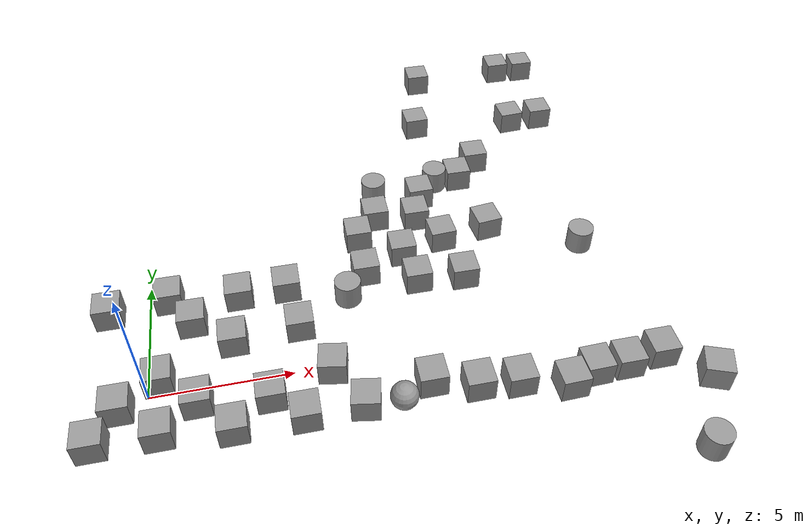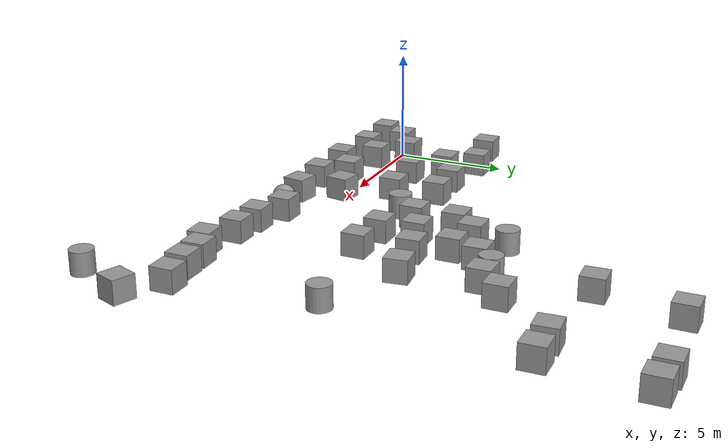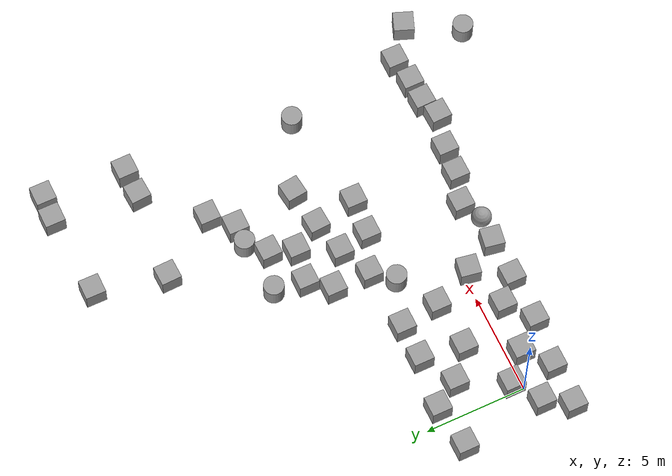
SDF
<sdf version="1.6">
 <world name="default">
  <model name="unit_box">
   <pose>11.5094 5.25015 0.5 0 -0 0.060312</pose>
   <link name="link">
    <inertial>
     <mass>1</mass>
     <inertia>
      <ixx>0.166667</ixx>
      <ixy>0</ixy>
      <ixz>0</ixz>
      <iyy>0.166667</iyy>
      <iyz>0</iyz>
      <izz>0.166667</izz>
     </inertia>
    </inertial>
    <collision name="collision"><geometry><box><size>1 1 1</size></box></geometry></collision>
    <visual name="visual">
     <geometry><box><size>1 1 1</size></box></geometry>
     <material>
      <script><name>Gazebo/Grey</name><uri>file://media/materials/scripts/gazebo.material</uri></script>
     </material>
    </visual>
   </link>
  </model>
  <model name="unit_box_0">
   <pose>13.4738 5.55681 0.5 0 -0 0.114947</pose>
   <link name="link">
    <inertial>
     <mass>1</mass>
     <inertia>
      <ixx>0.166667</ixx>
      <ixy>0</ixy>
      <ixz>0</ixz>
      <iyy>0.166667</iyy>
      <iyz>0</iyz>
      <izz>0.166667</izz>
     </inertia>
    </inertial>
    <collision name="collision"><geometry><box><size>1 1 1</size></box></geometry></collision>
    <visual name="visual">
     <geometry><box><size>1 1 1</size></box></geometry>
     <material>
      <script><name>Gazebo/Grey</name><uri>file://media/materials/scripts/gazebo.material</uri></script>
     </material>
    </visual>
   </link>
  </model>
  <model name="unit_box_1">
   <pose>14.0807 9.74982 0.5 -0 -0 -0.00018</pose>
   <link name="link">
    <inertial>
     <mass>1</mass>
     <inertia>
      <ixx>0.166667</ixx>
      <ixy>0</ixy>
      <ixz>0</ixz>
      <iyy>0.166667</iyy>
      <iyz>0</iyz>
      <izz>0.166667</izz>
     </inertia>
    </inertial>
    <collision name="collision"><geometry><box><size>1 1 1</size></box></geometry></collision>
    <visual name="visual">
     <geometry><box><size>1 1 1</size></box></geometry>
     <material>
      <script><name>Gazebo/Grey</name><uri>file://media/materials/scripts/gazebo.material</uri></script>
     </material>
    </visual>
   </link>
  </model>
  <model name="unit_box_2">
   <pose>10.7293 6.64639 0.5 -0 -0 -0</pose>
   <link name="link">
    <inertial>
     <mass>1</mass>
     <inertia>
      <ixx>0.166667</ixx>
      <ixy>0</ixy>
      <ixz>0</ixz>
      <iyy>0.166667</iyy>
      <iyz>0</iyz>
      <izz>0.166667</izz>
     </inertia>
    </inertial>
    <collision name="collision"><geometry><box><size>1 1 1</size></box></geometry></collision>
    <visual name="visual">
     <geometry><box><size>1 1 1</size></box></geometry>
     <material>
      <script><name>Gazebo/Grey</name><uri>file://media/materials/scripts/gazebo.material</uri></script>
     </material>
    </visual>
   </link>
  </model>
  <model name="unit_box_4">
   <pose>10.1064 3.25665 0.5 0 -0 6.5e-05</pose>
   <link name="link">
    <inertial>
     <mass>1</mass>
     <inertia>
      <ixx>0.166667</ixx>
      <ixy>0</ixy>
      <ixz>0</ixz>
      <iyy>0.166667</iyy>
      <iyz>0</iyz>
      <izz>0.166667</izz>
     </inertia>
    </inertial>
    <collision name="collision"><geometry><box><size>1 1 1</size></box></geometry></collision>
    <visual name="visual">
     <geometry><box><size>1 1 1</size></box></geometry>
     <material>
      <script><name>Gazebo/Grey</name><uri>file://media/materials/scripts/gazebo.material</uri></script>
     </material>
    </visual>
   </link>
  </model>
  <model name="unit_box_11">
   <pose>19.2948 -3.12575 0.5 -0 -0 -0.366964</pose>
   <link name="link">
    <inertial>
     <mass>1</mass>
     <inertia>
      <ixx>0.166667</ixx>
      <ixy>0</ixy>
      <ixz>0</ixz>
      <iyy>0.166667</iyy>
      <iyz>0</iyz>
      <izz>0.166667</izz>
     </inertia>
    </inertial>
    <collision name="collision"><geometry><box><size>1 1 1</size></box></geometry></collision>
    <visual name="visual">
     <geometry><box><size>1 1 1</size></box></geometry>
     <material>
      <script><name>Gazebo/Grey</name><uri>file://media/materials/scripts/gazebo.material</uri></script>
     </material>
    </visual>
   </link>
  </model>
  <model name="unit_box_13">
   <pose>16.4371 -2.10879 0.5 0 -0 1.9e-05</pose>
   <link name="link">
    <inertial>
     <mass>1</mass>
     <inertia>
      <ixx>0.166667</ixx>
      <ixy>0</ixy>
      <ixz>0</ixz>
      <iyy>0.166667</iyy>
      <iyz>0</iyz>
      <izz>0.166667</izz>
     </inertia>
    </inertial>
    <collision name="collision"><geometry><box><size>1 1 1</size></box></geometry></collision>
    <visual name="visual">
     <geometry><box><size>1 1 1</size></box></geometry>
     <material>
      <script><name>Gazebo/Grey</name><uri>file://media/materials/scripts/gazebo.material</uri></script>
     </material>
    </visual>
   </link>
  </model>
  <model name="unit_box_14">
   <pose>11.1121 -1.92344 0.5 -0 -0 -0</pose>
   <link name="link">
    <inertial>
     <mass>1</mass>
     <inertia>
      <ixx>0.166667</ixx>
      <ixy>0</ixy>
      <ixz>0</ixz>
      <iyy>0.166667</iyy>
      <iyz>0</iyz>
      <izz>0.166667</izz>
     </inertia>
    </inertial>
    <collision name="collision"><geometry><box><size>1 1 1</size></box></geometry></collision>
    <visual name="visual">
     <geometry><box><size>1 1 1</size></box></geometry>
     <material>
      <script><name>Gazebo/Grey</name><uri>file://media/materials/scripts/gazebo.material</uri></script>
     </material>
    </visual>
   </link>
  </model>
  <model name="unit_box_16">
   <pose>17.9274 12.3035 0.5 0 -0 0.010481</pose>
   <link name="link">
    <inertial>
     <mass>1</mass>
     <inertia>
      <ixx>0.166667</ixx>
      <ixy>0</ixy>
      <ixz>0</ixz>
      <iyy>0.166667</iyy>
      <iyz>0</iyz>
      <izz>0.166667</izz>
     </inertia>
    </inertial>
    <collision name="collision"><geometry><box><size>1 1 1</size></box></geometry></collision>
    <visual name="visual">
     <geometry><box><size>1 1 1</size></box></geometry>
     <material>
      <script><name>Gazebo/Grey</name><uri>file://media/materials/scripts/gazebo.material</uri></script>
     </material>
    </visual>
   </link>
  </model>
  <model name="unit_box_17">
   <pose>11.9019 3.10392 0.5 0 -0 -0.005415</pose>
   <link name="link">
    <inertial>
     <mass>1</mass>
     <inertia>
      <ixx>0.166667</ixx>
      <ixy>0</ixy>
      <ixz>0</ixz>
      <iyy>0.166667</iyy>
      <iyz>0</iyz>
      <izz>0.166667</izz>
     </inertia>
    </inertial>
    <collision name="collision"><geometry><box><size>1 1 1</size></box></geometry></collision>
    <visual name="visual">
     <geometry><box><size>1 1 1</size></box></geometry>
     <material>
      <script><name>Gazebo/Grey</name><uri>file://media/materials/scripts/gazebo.material</uri></script>
     </material>
    </visual>
   </link>
  </model>
  <model name="unit_box_32">
   <pose>12.0496 12.7124 0.5 3e-06 -3e-06 0.034496</pose>
   <link name="link">
    <inertial>
     <mass>1</mass>
     <inertia>
      <ixx>0.166667</ixx>
      <ixy>0</ixy>
      <ixz>0</ixz>
      <iyy>0.166667</iyy>
      <iyz>0</iyz>
      <izz>0.166667</izz>
     </inertia>
    </inertial>
    <collision name="collision"><geometry><box><size>1 1 1</size></box></geometry></collision>
    <visual name="visual">
     <geometry><box><size>1 1 1</size></box></geometry>
     <material>
      <script><name>Gazebo/Grey</name><uri>file://media/materials/scripts/gazebo.material</uri></script>
     </material>
    </visual>
   </link>
  </model>
  <model name="unit_cylinder_1">
   <pose>12.0458 8.7343 0.5 0 -0 -0.023751</pose>
   <link name="link">
    <inertial>
     <mass>1</mass>
     <inertia><ixx>0.145833</ixx><ixy>0</ixy><ixz>0</ixz><iyy>0.145833</iyy><iyz>0</iyz><izz>0.125</izz></inertia>
    </inertial>
    <collision name="collision">
     <geometry><cylinder><radius>0.5</radius><length>1</length></cylinder></geometry>
    </collision>
    <visual name="visual">
     <geometry><cylinder><radius>0.5</radius><length>1</length></cylinder></geometry>
     <material>
      <script><name>Gazebo/Grey</name><uri>file://media/materials/scripts/gazebo.material</uri></script>
     </material>
    </visual>
   </link>
  </model>
  <model name="unit_box_33">
   <pose>14.2425 -2.50789 0.500002 -4e-06 -0 0.026503</pose>
   <link name="link">
    <inertial>
     <mass>1</mass>
     <inertia>
      <ixx>0.166667</ixx>
      <ixy>0</ixy>
      <ixz>0</ixz>
      <iyy>0.166667</iyy>
      <iyz>0</iyz>
      <izz>0.166667</izz>
     </inertia>
    </inertial>
    <collision name="collision"><geometry><box><size>1 1 1</size></box></geometry></collision>
    <visual name="visual">
     <geometry><box><size>1 1 1</size></box></geometry>
     <material>
      <script><name>Gazebo/Grey</name><uri>file://media/materials/scripts/gazebo.material</uri></script>
     </material>
    </visual>
   </link>
  </model>
  <model name="unit_cylinder_4">
   <pose>17.9411 -5.6761 0.500002 -3e-06 -1e-06 0.035449</pose>
   <link name="link">
    <inertial>
     <mass>1</mass>
     <inertia><ixx>0.145833</ixx><ixy>0</ixy><ixz>0</ixz><iyy>0.145833</iyy><iyz>0</iyz><izz>0.125</izz></inertia>
    </inertial>
    <collision name="collision">
     <geometry><cylinder><radius>0.5</radius><length>1</length></cylinder></geometry>
    </collision>
    <visual name="visual">
     <geometry><cylinder><radius>0.5</radius><length>1</length></cylinder></geometry>
     <material>
      <script><name>Gazebo/Grey</name><uri>file://media/materials/scripts/gazebo.material</uri></script>
     </material>
    </visual>
   </link>
  </model>
  <model name="unit_box_37">
   <pose>12.5336 -2.05299 0.5 -0 -0 -0</pose>
   <link name="link">
    <inertial>
     <mass>1</mass>
     <inertia>
      <ixx>0.166667</ixx>
      <ixy>0</ixy>
      <ixz>0</ixz>
      <iyy>0.166667</iyy>
      <iyz>0</iyz>
      <izz>0.166667</izz>
     </inertia>
    </inertial>
    <collision name="collision"><geometry><box><size>1 1 1</size></box></geometry></collision>
    <visual name="visual">
     <geometry><box><size>1 1 1</size></box></geometry>
     <material>
      <script><name>Gazebo/Grey</name><uri>file://media/materials/scripts/gazebo.material</uri></script>
     </material>
    </visual>
   </link>
  </model>
  <model name="unit_box_40">
   <pose>17.768 -1.91302 0.5 0 -0 1.8e-05</pose>
   <link name="link">
    <inertial>
     <mass>1</mass>
     <inertia>
      <ixx>0.166667</ixx>
      <ixy>0</ixy>
      <ixz>0</ixz>
      <iyy>0.166667</iyy>
      <iyz>0</iyz>
      <izz>0.166667</izz>
     </inertia>
    </inertial>
    <collision name="collision"><geometry><box><size>1 1 1</size></box></geometry></collision>
    <visual name="visual">
     <geometry><box><size>1 1 1</size></box></geometry>
     <material>
      <script><name>Gazebo/Grey</name><uri>file://media/materials/scripts/gazebo.material</uri></script>
     </material>
    </visual>
   </link>
  </model>
  <model name="unit_cylinder_6">
   <pose>7.37133 3.024 0.500003 -3e-06 6e-06 -0.001542</pose>
   <link name="link">
    <inertial>
     <mass>1</mass>
     <inertia><ixx>0.145833</ixx><ixy>0</ixy><ixz>0</ixz><iyy>0.145833</iyy><iyz>0</iyz><izz>0.125</izz></inertia>
    </inertial>
    <collision name="collision">
     <geometry><cylinder><radius>0.5</radius><length>1</length></cylinder></geometry>
    </collision>
    <visual name="visual">
     <geometry><cylinder><radius>0.5</radius><length>1</length></cylinder></geometry>
     <material>
      <script><name>Gazebo/Grey</name><uri>file://media/materials/scripts/gazebo.material</uri></script>
     </material>
    </visual>
   </link>
  </model>
  <model name="unit_cylinder_7">
   <pose>9.31858 8.47639 0.49999 0 0 -0.001454</pose>
   <link name="link">
    <inertial>
     <mass>1</mass>
     <inertia><ixx>0.145833</ixx><ixy>0</ixy><ixz>0</ixz><iyy>0.145833</iyy><iyz>0</iyz><izz>0.125</izz></inertia>
    </inertial>
    <collision name="collision">
     <geometry><cylinder><radius>0.5</radius><length>1</length></cylinder></geometry>
    </collision>
    <visual name="visual">
     <geometry><cylinder><radius>0.5</radius><length>1</length></cylinder></geometry>
     <material>
      <script><name>Gazebo/Grey</name><uri>file://media/materials/scripts/gazebo.material</uri></script>
     </material>
    </visual>
   </link>
  </model>
  <model name="unit_sphere_0">
   <pose>8.51473 -2.00732 0.5 0 -0 0</pose>
   <link name="link">
    <inertial>
     <mass>1</mass>
     <inertia><ixx>0.1</ixx><ixy>0</ixy><ixz>0</ixz><iyy>0.1</iyy><iyz>0</iyz><izz>0.1</izz></inertia>
    </inertial>
    <collision name="collision"><geometry><sphere><radius>0.5</radius></sphere></geometry></collision>
    <visual name="visual">
     <geometry><sphere><radius>0.5</radius></sphere></geometry>
     <material>
      <script><name>Gazebo/Grey</name><uri>file://media/materials/scripts/gazebo.material</uri></script>
     </material>
    </visual>
   </link>
  </model>
  <model name="unit_box_15">
   <pose>5.11461 3.81129 0.5 -0 -0 -0</pose>
   <link name="link">
    <inertial>
     <mass>1</mass>
     <inertia>
      <ixx>0.166667</ixx>
      <ixy>0</ixy>
      <ixz>0</ixz>
      <iyy>0.166667</iyy>
      <iyz>0</iyz>
      <izz>0.166667</izz>
     </inertia>
    </inertial>
    <collision name="collision"><geometry><box><size>1 1 1</size></box></geometry></collision>
    <visual name="visual">
     <geometry><box><size>1 1 1</size></box></geometry>
     <material>
      <script><name>Gazebo/Grey</name><uri>file://media/materials/scripts/gazebo.material</uri></script>
     </material>
    </visual>
   </link>
  </model>
  <model name="unit_box_18">
   <pose>5.1888 -1.9458 0.5 -0 -0 -0</pose>
   <link name="link">
    <inertial>
     <mass>1</mass>
     <inertia>
      <ixx>0.166667</ixx>
      <ixy>0</ixy>
      <ixz>0</ixz>
      <iyy>0.166667</iyy>
      <iyz>0</iyz>
      <izz>0.166667</izz>
     </inertia>
    </inertial>
    <collision name="collision"><geometry><box><size>1 1 1</size></box></geometry></collision>
    <visual name="visual">
     <geometry><box><size>1 1 1</size></box></geometry>
     <material>
      <script><name>Gazebo/Grey</name><uri>file://media/materials/scripts/gazebo.material</uri></script>
     </material>
    </visual>
   </link>
  </model>
  <model name="unit_box_30">
   <pose>2.80806 -1.94549 0.5 -0 -0 -0</pose>
   <link name="link">
    <inertial>
     <mass>1</mass>
     <inertia>
      <ixx>0.166667</ixx>
      <ixy>0</ixy>
      <ixz>0</ixz>
      <iyy>0.166667</iyy>
      <iyz>0</iyz>
      <izz>0.166667</izz>
     </inertia>
    </inertial>
    <collision name="collision"><geometry><box><size>1 1 1</size></box></geometry></collision>
    <visual name="visual">
     <geometry><box><size>1 1 1</size></box></geometry>
     <material>
      <script><name>Gazebo/Grey</name><uri>file://media/materials/scripts/gazebo.material</uri></script>
     </material>
    </visual>
   </link>
  </model>
  <model name="unit_box_43">
   <pose>3.32189 3.77591 0.5 -0 -0 -0</pose>
   <link name="link">
    <inertial>
     <mass>1</mass>
     <inertia>
      <ixx>0.166667</ixx>
      <ixy>0</ixy>
      <ixz>0</ixz>
      <iyy>0.166667</iyy>
      <iyz>0</iyz>
      <izz>0.166667</izz>
     </inertia>
    </inertial>
    <collision name="collision"><geometry><box><size>1 1 1</size></box></geometry></collision>
    <visual name="visual">
     <geometry><box><size>1 1 1</size></box></geometry>
     <material>
      <script><name>Gazebo/Grey</name><uri>file://media/materials/scripts/gazebo.material</uri></script>
     </material>
    </visual>
   </link>
  </model>
  <model name="unit_box_44">
   <pose>0.735542 4.10975 0.5 -0 -0 -0</pose>
   <link name="link">
    <inertial>
     <mass>1</mass>
     <inertia>
      <ixx>0.166667</ixx>
      <ixy>0</ixy>
      <ixz>0</ixz>
      <iyy>0.166667</iyy>
      <iyz>0</iyz>
      <izz>0.166667</izz>
     </inertia>
    </inertial>
    <collision name="collision"><geometry><box><size>1 1 1</size></box></geometry></collision>
    <visual name="visual">
     <geometry><box><size>1 1 1</size></box></geometry>
     <material>
      <script><name>Gazebo/Grey</name><uri>file://media/materials/scripts/gazebo.material</uri></script>
     </material>
    </visual>
   </link>
  </model>
  <model name="unit_box_45">
   <pose>0.409452 -1.66183 0.5 -0 -0 -0</pose>
   <link name="link">
    <inertial>
     <mass>1</mass>
     <inertia>
      <ixx>0.166667</ixx>
      <ixy>0</ixy>
      <ixz>0</ixz>
      <iyy>0.166667</iyy>
      <iyz>0</iyz>
      <izz>0.166667</izz>
     </inertia>
    </inertial>
    <collision name="collision"><geometry><box><size>1 1 1</size></box></geometry></collision>
    <visual name="visual">
     <geometry><box><size>1 1 1</size></box></geometry>
     <material>
      <script><name>Gazebo/Grey</name><uri>file://media/materials/scripts/gazebo.material</uri></script>
     </material>
    </visual>
   </link>
  </model>
  <model name="unit_box_46">
   <pose>-1.43798 3.80959 0.5 0 -0 0.002146</pose>
   <link name="link">
    <inertial>
     <mass>1</mass>
     <inertia>
      <ixx>0.166667</ixx>
      <ixy>0</ixy>
      <ixz>0</ixz>
      <iyy>0.166667</iyy>
      <iyz>0</iyz>
      <izz>0.166667</izz>
     </inertia>
    </inertial>
    <collision name="collision"><geometry><box><size>1 1 1</size></box></geometry></collision>
    <visual name="visual">
     <geometry><box><size>1 1 1</size></box></geometry>
     <material>
      <script><name>Gazebo/Grey</name><uri>file://media/materials/scripts/gazebo.material</uri></script>
     </material>
    </visual>
   </link>
  </model>
  <model name="unit_box_47">
   <pose>-1.73529 -1.64273 0.5 -0 -0 -0</pose>
   <link name="link">
    <inertial>
     <mass>1</mass>
     <inertia>
      <ixx>0.166667</ixx>
      <ixy>0</ixy>
      <ixz>0</ixz>
      <iyy>0.166667</iyy>
      <iyz>0</iyz>
      <izz>0.166667</izz>
     </inertia>
    </inertial>
    <collision name="collision"><geometry><box><size>1 1 1</size></box></geometry></collision>
    <visual name="visual">
     <geometry><box><size>1 1 1</size></box></geometry>
     <material>
      <script><name>Gazebo/Grey</name><uri>file://media/materials/scripts/gazebo.material</uri></script>
     </material>
    </visual>
   </link>
  </model>
  <model name="unit_box_48">
   <pose>7.21865 -1.91094 0.5 -0 -0 -0.169212</pose>
   <link name="link">
    <inertial>
     <mass>1</mass>
     <inertia>
      <ixx>0.166667</ixx>
      <ixy>0</ixy>
      <ixz>0</ixz>
      <iyy>0.166667</iyy>
      <iyz>0</iyz>
      <izz>0.166667</izz>
     </inertia>
    </inertial>
    <collision name="collision"><geometry><box><size>1 1 1</size></box></geometry></collision>
    <visual name="visual">
     <geometry><box><size>1 1 1</size></box></geometry>
     <material>
      <script><name>Gazebo/Grey</name><uri>file://media/materials/scripts/gazebo.material</uri></script>
     </material>
    </visual>
   </link>
  </model>
  <model name="unit_box_49">
   <pose>8.21205 5.89832 0.5 -0 -0 -0</pose>
   <link name="link">
    <inertial>
     <mass>1</mass>
     <inertia>
      <ixx>0.166667</ixx>
      <ixy>0</ixy>
      <ixz>0</ixz>
      <iyy>0.166667</iyy>
      <iyz>0</iyz>
      <izz>0.166667</izz>
     </inertia>
    </inertial>
    <collision name="collision"><geometry><box><size>1 1 1</size></box></geometry></collision>
    <visual name="visual">
     <geometry><box><size>1 1 1</size></box></geometry>
     <material>
      <script><name>Gazebo/Grey</name><uri>file://media/materials/scripts/gazebo.material</uri></script>
     </material>
    </visual>
   </link>
  </model>
  <model name="unit_box_50">
   <pose>9.09547 6.94648 0.5 -0 -0 -0</pose>
   <link name="link">
    <inertial>
     <mass>1</mass>
     <inertia>
      <ixx>0.166667</ixx>
      <ixy>0</ixy>
      <ixz>0</ixz>
      <iyy>0.166667</iyy>
      <iyz>0</iyz>
      <izz>0.166667</izz>
     </inertia>
    </inertial>
    <collision name="collision"><geometry><box><size>1 1 1</size></box></geometry></collision>
    <visual name="visual">
     <geometry><box><size>1 1 1</size></box></geometry>
     <material>
      <script><name>Gazebo/Grey</name><uri>file://media/materials/scripts/gazebo.material</uri></script>
     </material>
    </visual>
   </link>
  </model>
  <model name="unit_box_51">
   <pose>11.1815 7.89389 0.500002 -4e-06 -0 0.030177</pose>
   <link name="link">
    <inertial>
     <mass>1</mass>
     <inertia>
      <ixx>0.166667</ixx>
      <ixy>0</ixy>
      <ixz>0</ixz>
      <iyy>0.166667</iyy>
      <iyz>0</iyz>
      <izz>0.166667</izz>
     </inertia>
    </inertial>
    <collision name="collision"><geometry><box><size>1 1 1</size></box></geometry></collision>
    <visual name="visual">
     <geometry><box><size>1 1 1</size></box></geometry>
     <material>
      <script><name>Gazebo/Grey</name><uri>file://media/materials/scripts/gazebo.material</uri></script>
     </material>
    </visual>
   </link>
  </model>
  <model name="unit_box_52">
   <pose>13.0461 8.73855 0.5 0 -0 -0.005549</pose>
   <link name="link">
    <inertial>
     <mass>1</mass>
     <inertia>
      <ixx>0.166667</ixx>
      <ixy>0</ixy>
      <ixz>0</ixz>
      <iyy>0.166667</iyy>
      <iyz>0</iyz>
      <izz>0.166667</izz>
     </inertia>
    </inertial>
    <collision name="collision"><geometry><box><size>1 1 1</size></box></geometry></collision>
    <visual name="visual">
     <geometry><box><size>1 1 1</size></box></geometry>
     <material>
      <script><name>Gazebo/Grey</name><uri>file://media/materials/scripts/gazebo.material</uri></script>
     </material>
    </visual>
   </link>
  </model>
  <model name="unit_box_58">
   <pose>12.898 16.2053 0.5 0 -0 -0.005419</pose>
   <link name="link">
    <inertial>
     <mass>1</mass>
     <inertia>
      <ixx>0.166667</ixx>
      <ixy>0</ixy>
      <ixz>0</ixz>
      <iyy>0.166667</iyy>
      <iyz>0</iyz>
      <izz>0.166667</izz>
     </inertia>
    </inertial>
    <collision name="collision"><geometry><box><size>1 1 1</size></box></geometry></collision>
    <visual name="visual">
     <geometry><box><size>1 1 1</size></box></geometry>
     <material>
      <script><name>Gazebo/Grey</name><uri>file://media/materials/scripts/gazebo.material</uri></script>
     </material>
    </visual>
   </link>
  </model>
  <model name="unit_box_59">
   <pose>15.2594 -2.15477 0.500002 -4e-06 -0 0.026559</pose>
   <link name="link">
    <inertial>
     <mass>1</mass>
     <inertia>
      <ixx>0.166667</ixx>
      <ixy>0</ixy>
      <ixz>0</ixz>
      <iyy>0.166667</iyy>
      <iyz>0</iyz>
      <izz>0.166667</izz>
     </inertia>
    </inertial>
    <collision name="collision"><geometry><box><size>1 1 1</size></box></geometry></collision>
    <visual name="visual">
     <geometry><box><size>1 1 1</size></box></geometry>
     <material>
      <script><name>Gazebo/Grey</name><uri>file://media/materials/scripts/gazebo.material</uri></script>
     </material>
    </visual>
   </link>
  </model>
  <model name="unit_box_60">
   <pose>9.57934 -1.43811 0.5 -0 -0 -0</pose>
   <link name="link">
    <inertial>
     <mass>1</mass>
     <inertia>
      <ixx>0.166667</ixx>
      <ixy>0</ixy>
      <ixz>0</ixz>
      <iyy>0.166667</iyy>
      <iyz>0</iyz>
      <izz>0.166667</izz>
     </inertia>
    </inertial>
    <collision name="collision"><geometry><box><size>1 1 1</size></box></geometry></collision>
    <visual name="visual">
     <geometry><box><size>1 1 1</size></box></geometry>
     <material>
      <script><name>Gazebo/Grey</name><uri>file://media/materials/scripts/gazebo.material</uri></script>
     </material>
    </visual>
   </link>
  </model>
  <model name="unit_box_62">
   <pose>8.20277 4.03308 0.5 -0 -0 -0</pose>
   <link name="link">
    <inertial>
     <mass>1</mass>
     <inertia>
      <ixx>0.166667</ixx>
      <ixy>0</ixy>
      <ixz>0</ixz>
      <iyy>0.166667</iyy>
      <iyz>0</iyz>
      <izz>0.166667</izz>
     </inertia>
    </inertial>
    <collision name="collision"><geometry><box><size>1 1 1</size></box></geometry></collision>
    <visual name="visual">
     <geometry><box><size>1 1 1</size></box></geometry>
     <material>
      <script><name>Gazebo/Grey</name><uri>file://media/materials/scripts/gazebo.material</uri></script>
     </material>
    </visual>
   </link>
  </model>
  <model name="unit_box_63">
   <pose>1.56768 2.82246 0.5 -0 -0 -0</pose>
   <link name="link">
    <inertial>
     <mass>1</mass>
     <inertia>
      <ixx>0.166667</ixx>
      <ixy>0</ixy>
      <ixz>0</ixz>
      <iyy>0.166667</iyy>
      <iyz>0</iyz>
      <izz>0.166667</izz>
     </inertia>
    </inertial>
    <collision name="collision"><geometry><box><size>1 1 1</size></box></geometry></collision>
    <visual name="visual">
     <geometry><box><size>1 1 1</size></box></geometry>
     <material>
      <script><name>Gazebo/Grey</name><uri>file://media/materials/scripts/gazebo.material</uri></script>
     </material>
    </visual>
   </link>
  </model>
  <model name="unit_box_64">
   <pose>-0.965909 -0.415811 0.5 -0 -0 -0</pose>
   <link name="link">
    <inertial>
     <mass>1</mass>
     <inertia>
      <ixx>0.166667</ixx>
      <ixy>0</ixy>
      <ixz>0</ixz>
      <iyy>0.166667</iyy>
      <iyz>0</iyz>
      <izz>0.166667</izz>
     </inertia>
    </inertial>
    <collision name="collision"><geometry><box><size>1 1 1</size></box></geometry></collision>
    <visual name="visual">
     <geometry><box><size>1 1 1</size></box></geometry>
     <material>
      <script><name>Gazebo/Grey</name><uri>file://media/materials/scripts/gazebo.material</uri></script>
     </material>
    </visual>
   </link>
  </model>
  <model name="unit_box_65">
   <pose>1.66895 -0.666107 0.5 -0 -0 -0</pose>
   <link name="link">
    <inertial>
     <mass>1</mass>
     <inertia>
      <ixx>0.166667</ixx>
      <ixy>0</ixy>
      <ixz>0</ixz>
      <iyy>0.166667</iyy>
      <iyz>0</iyz>
      <izz>0.166667</izz>
     </inertia>
    </inertial>
    <collision name="collision"><geometry><box><size>1 1 1</size></box></geometry></collision>
    <visual name="visual">
     <geometry><box><size>1 1 1</size></box></geometry>
     <material>
      <script><name>Gazebo/Grey</name><uri>file://media/materials/scripts/gazebo.material</uri></script>
     </material>
    </visual>
   </link>
  </model>
  <model name="unit_box_66">
   <pose>4.12428 -0.944481 0.5 -0 -0 -0</pose>
   <link name="link">
    <inertial>
     <mass>1</mass>
     <inertia>
      <ixx>0.166667</ixx>
      <ixy>0</ixy>
      <ixz>0</ixz>
      <iyy>0.166667</iyy>
      <iyz>0</iyz>
      <izz>0.166667</izz>
     </inertia>
    </inertial>
    <collision name="collision"><geometry><box><size>1 1 1</size></box></geometry></collision>
    <visual name="visual">
     <geometry><box><size>1 1 1</size></box></geometry>
     <material>
      <script><name>Gazebo/Grey</name><uri>file://media/materials/scripts/gazebo.material</uri></script>
     </material>
    </visual>
   </link>
  </model>
  <model name="unit_box_67">
   <pose>2.99496 1.65782 0.5 -0 -0 -0</pose>
   <link name="link">
    <inertial>
     <mass>1</mass>
     <inertia>
      <ixx>0.166667</ixx>
      <ixy>0</ixy>
      <ixz>0</ixz>
      <iyy>0.166667</iyy>
      <iyz>0</iyz>
      <izz>0.166667</izz>
     </inertia>
    </inertial>
    <collision name="collision"><geometry><box><size>1 1 1</size></box></geometry></collision>
    <visual name="visual">
     <geometry><box><size>1 1 1</size></box></geometry>
     <material>
      <script><name>Gazebo/Grey</name><uri>file://media/materials/scripts/gazebo.material</uri></script>
     </material>
    </visual>
   </link>
  </model>
  <model name="unit_box_68">
   <pose>0.392275 0.467871 0.5 -0 -0 -0</pose>
   <link name="link">
    <inertial>
     <mass>1</mass>
     <inertia>
      <ixx>0.166667</ixx>
      <ixy>0</ixy>
      <ixz>0</ixz>
      <iyy>0.166667</iyy>
      <iyz>0</iyz>
      <izz>0.166667</izz>
     </inertia>
    </inertial>
    <collision name="collision"><geometry><box><size>1 1 1</size></box></geometry></collision>
    <visual name="visual">
     <geometry><box><size>1 1 1</size></box></geometry>
     <material>
      <script><name>Gazebo/Grey</name><uri>file://media/materials/scripts/gazebo.material</uri></script>
     </material>
    </visual>
   </link>
  </model>
  <model name="unit_box_69">
   <pose>5.409 1.86261 0.5 -0 -0 -0</pose>
   <link name="link">
    <inertial>
     <mass>1</mass>
     <inertia>
      <ixx>0.166667</ixx>
      <ixy>0</ixy>
      <ixz>0</ixz>
      <iyy>0.166667</iyy>
      <iyz>0</iyz>
      <izz>0.166667</izz>
     </inertia>
    </inertial>
    <collision name="collision"><geometry><box><size>1 1 1</size></box></geometry></collision>
    <visual name="visual">
     <geometry><box><size>1 1 1</size></box></geometry>
     <material>
      <script><name>Gazebo/Grey</name><uri>file://media/materials/scripts/gazebo.material</uri></script>
     </material>
    </visual>
   </link>
  </model>
  <model name="unit_box_70">
   <pose>6.33845 -0.230814 0.499996 0 9e-06 -0.169269</pose>
   <link name="link">
    <inertial>
     <mass>1</mass>
     <inertia>
      <ixx>0.166667</ixx>
      <ixy>0</ixy>
      <ixz>0</ixz>
      <iyy>0.166667</iyy>
      <iyz>0</iyz>
      <izz>0.166667</izz>
     </inertia>
    </inertial>
    <collision name="collision"><geometry><box><size>1 1 1</size></box></geometry></collision>
    <visual name="visual">
     <geometry><box><size>1 1 1</size></box></geometry>
     <material>
      <script><name>Gazebo/Grey</name><uri>file://media/materials/scripts/gazebo.material</uri></script>
     </material>
    </visual>
   </link>
  </model>
  <model name="unit_box_74">
   <pose>9.80562 4.79038 0.5 0 -0 7.4e-05</pose>
   <link name="link">
    <inertial>
     <mass>1</mass>
     <inertia>
      <ixx>0.166667</ixx>
      <ixy>0</ixy>
      <ixz>0</ixz>
      <iyy>0.166667</iyy>
      <iyz>0</iyz>
      <izz>0.166667</izz>
     </inertia>
    </inertial>
    <collision name="collision"><geometry><box><size>1 1 1</size></box></geometry></collision>
    <visual name="visual">
     <geometry><box><size>1 1 1</size></box></geometry>
     <material>
      <script><name>Gazebo/Grey</name><uri>file://media/materials/scripts/gazebo.material</uri></script>
     </material>
    </visual>
   </link>
  </model>
  <model name="unit_box_78">
   <pose>18.3102 16.374 0.5 -0 -0 -0</pose>
   <link name="link">
    <inertial>
     <mass>1</mass>
     <inertia>
      <ixx>0.166667</ixx>
      <ixy>0</ixy>
      <ixz>0</ixz>
      <iyy>0.166667</iyy>
      <iyz>0</iyz>
      <izz>0.166667</izz>
     </inertia>
    </inertial>
    <collision name="collision"><geometry><box><size>1 1 1</size></box></geometry></collision>
    <visual name="visual">
     <geometry><box><size>1 1 1</size></box></geometry>
     <material>
      <script><name>Gazebo/Grey</name><uri>file://media/materials/scripts/gazebo.material</uri></script>
     </material>
    </visual>
   </link>
  </model>
  <model name="unit_box_79">
   <pose>16.5085 12.2853 0.5 0 -0 0.059686</pose>
   <link name="link">
    <inertial>
     <mass>1</mass>
     <inertia>
      <ixx>0.166667</ixx>
      <ixy>0</ixy>
      <ixz>0</ixz>
      <iyy>0.166667</iyy>
      <iyz>0</iyz>
      <izz>0.166667</izz>
     </inertia>
    </inertial>
    <collision name="collision"><geometry><box><size>1 1 1</size></box></geometry></collision>
    <visual name="visual">
     <geometry><box><size>1 1 1</size></box></geometry>
     <material>
      <script><name>Gazebo/Grey</name><uri>file://media/materials/scripts/gazebo.material</uri></script>
     </material>
    </visual>
   </link>
  </model>
  <model name="unit_box_80">
   <pose>17.079 16.4522 0.5 -0 -0 -0</pose>
   <link name="link">
    <inertial>
     <mass>1</mass>
     <inertia>
      <ixx>0.166667</ixx>
      <ixy>0</ixy>
      <ixz>0</ixz>
      <iyy>0.166667</iyy>
      <iyz>0</iyz>
      <izz>0.166667</izz>
     </inertia>
    </inertial>
    <collision name="collision"><geometry><box><size>1 1 1</size></box></geometry></collision>
    <visual name="visual">
     <geometry><box><size>1 1 1</size></box></geometry>
     <material>
      <script><name>Gazebo/Grey</name><uri>file://media/materials/scripts/gazebo.material</uri></script>
     </material>
    </visual>
   </link>
  </model>
  <model name="unit_cylinder_2">
   <pose>16.9723 3.96509 0.5 0 -0 -0.000455</pose>
   <link name="link">
    <inertial>
     <mass>1</mass>
     <inertia><ixx>0.145833</ixx><ixy>0</ixy><ixz>0</ixz><iyy>0.145833</iyy><iyz>0</iyz><izz>0.125</izz></inertia>
    </inertial>
    <collision name="collision">
     <geometry><cylinder><radius>0.5</radius><length>1</length></cylinder></geometry>
    </collision>
    <visual name="visual">
     <geometry><cylinder><radius>0.5</radius><length>1</length></cylinder></geometry>
     <material>
      <script><name>Gazebo/Grey</name><uri>file://media/materials/scripts/gazebo.material</uri></script>
     </material>
    </visual>
   </link>
  </model>
 </world>
</sdf>
